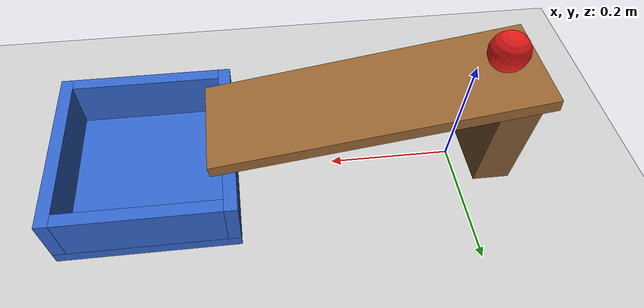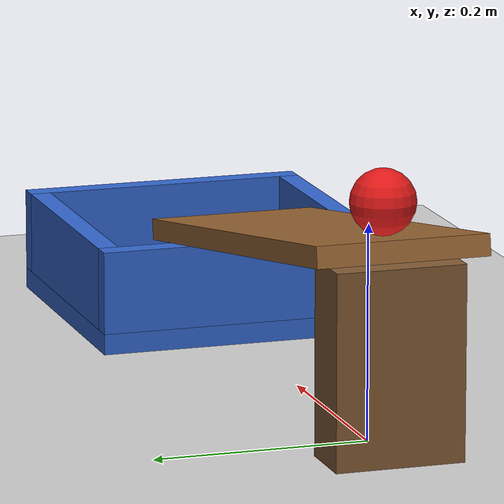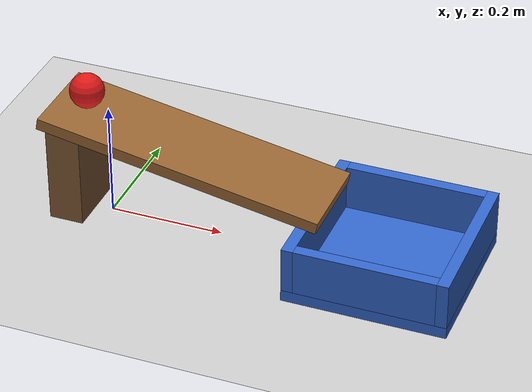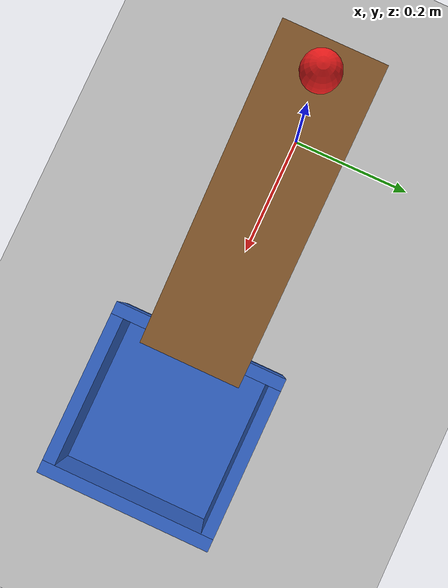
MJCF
<mujoco model="ball_ramp_cup">
  <option timestep="0.002" gravity="0 0 -9.81"/>
  <worldbody>
    <light name="sun" pos="0 0 3" dir="0 0 -1" directional="true"/>
    <geom name="floor" type="plane" size="3 3 0.1" rgba="0.8 0.8 0.8 1"/>

    <!-- Ramp: 0.5 m long, tilted 10 deg, descending toward +x; low end overhangs the cup interior -->
    <geom name="ramp_board" type="box" size="0.25 0.08 0.01" pos="0.15206 0 0.15356" euler="0 10 0" rgba="0.6 0.4 0.2 1"/>
    <geom name="ramp_support" type="box" size="0.03 0.06 0.09" pos="-0.06 0 0.09" rgba="0.5 0.35 0.2 1"/>

    <!-- Cup: open box, inner 0.24 x 0.24 m, interior floor at z = 0.02, rim at z = 0.10 -->
    <body name="cup" pos="0.5 0 0">
      <geom name="cup_base" type="box" size="0.14 0.14 0.01" pos="0 0 0.01" rgba="0.2 0.4 0.8 1"/>
      <geom name="cup_wall_near" type="box" size="0.01 0.14 0.04" pos="-0.13 0 0.06" rgba="0.2 0.4 0.8 1"/>
      <geom name="cup_wall_far" type="box" size="0.01 0.14 0.04" pos="0.13 0 0.06" rgba="0.2 0.4 0.8 1"/>
      <geom name="cup_wall_left" type="box" size="0.12 0.01 0.04" pos="0 0.13 0.06" rgba="0.2 0.4 0.8 1"/>
      <geom name="cup_wall_right" type="box" size="0.12 0.01 0.04" pos="0 -0.13 0.06" rgba="0.2 0.4 0.8 1"/>
    </body>

    <!-- Ball: radius 3 cm, with rolling friction so it settles -->
    <body name="ball" pos="-0.0381 0 0.2286">
      <freejoint name="ball_free"/>
      <geom name="ball" type="sphere" size="0.03" density="1000" condim="6" friction="1 0.005 0.002" rgba="0.9 0.1 0.1 1"/>
    </body>
  </worldbody>

  <keyframe>
    <key name="start" qpos="-0.0381 0 0.2286 1 0 0 0" qvel="0 0 0 0 0 0"/>
  </keyframe>
</mujoco>
